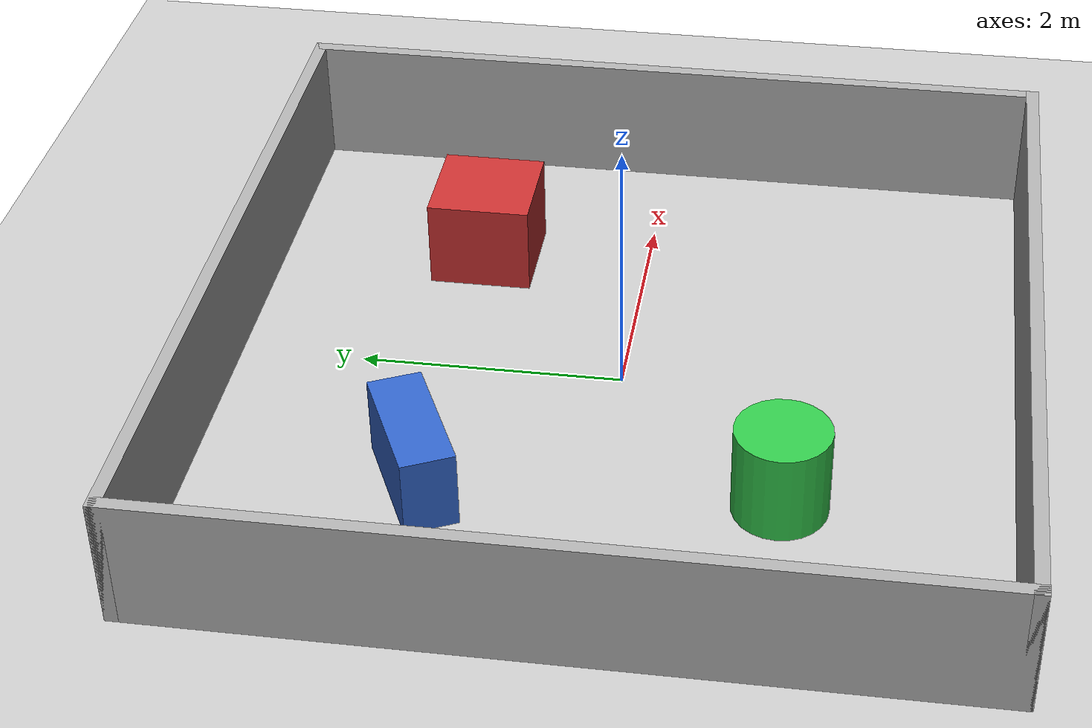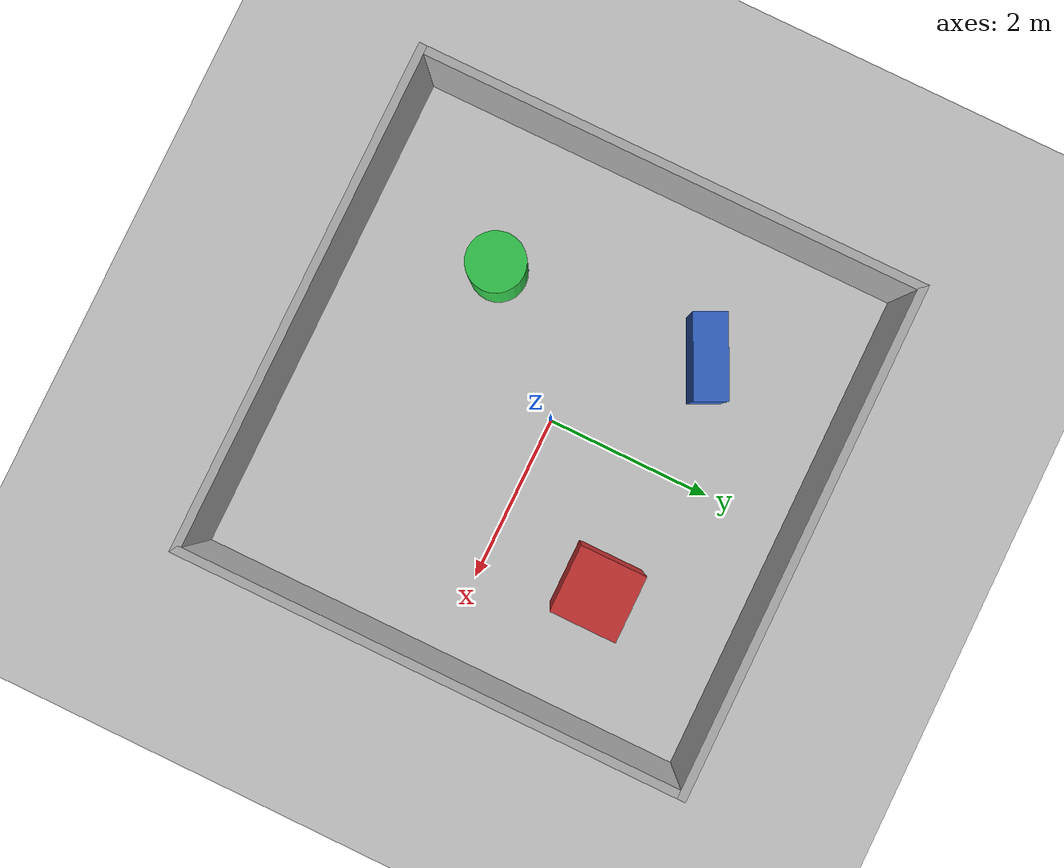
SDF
<?xml version="1.0" ?>
<sdf version="1.6">
  <world name="simple_room">
    <include>
      <uri>model://sun</uri>
    </include>

    <include>
      <uri>model://ground_plane</uri>
    </include>

    <model name="outer_walls">
      <static>true</static>

      <link name="north_wall">
        <pose>0 3.0 0.5 0 0 0</pose>
        <collision name="collision">
          <geometry>
            <box><size>6.1 0.1 1.0</size></box>
          </geometry>
        </collision>
        <visual name="visual">
          <geometry>
            <box><size>6.1 0.1 1.0</size></box>
          </geometry>
          <material>
            <ambient>0.7 0.7 0.7 1</ambient>
            <diffuse>0.7 0.7 0.7 1</diffuse>
          </material>
        </visual>
      </link>

      <link name="south_wall">
        <pose>0 -3.0 0.5 0 0 0</pose>
        <collision name="collision">
          <geometry>
            <box><size>6.1 0.1 1.0</size></box>
          </geometry>
        </collision>
        <visual name="visual">
          <geometry>
            <box><size>6.1 0.1 1.0</size></box>
          </geometry>
          <material>
            <ambient>0.7 0.7 0.7 1</ambient>
            <diffuse>0.7 0.7 0.7 1</diffuse>
          </material>
        </visual>
      </link>

      <link name="east_wall">
        <pose>3.0 0 0.5 0 0 0</pose>
        <collision name="collision">
          <geometry>
            <box><size>0.1 6.1 1.0</size></box>
          </geometry>
        </collision>
        <visual name="visual">
          <geometry>
            <box><size>0.1 6.1 1.0</size></box>
          </geometry>
          <material>
            <ambient>0.7 0.7 0.7 1</ambient>
            <diffuse>0.7 0.7 0.7 1</diffuse>
          </material>
        </visual>
      </link>

      <link name="west_wall">
        <pose>-3.0 0 0.5 0 0 0</pose>
        <collision name="collision">
          <geometry>
            <box><size>0.1 6.1 1.0</size></box>
          </geometry>
        </collision>
        <visual name="visual">
          <geometry>
            <box><size>0.1 6.1 1.0</size></box>
          </geometry>
          <material>
            <ambient>0.7 0.7 0.7 1</ambient>
            <diffuse>0.7 0.7 0.7 1</diffuse>
          </material>
        </visual>
      </link>
    </model>

    <model name="box_obstacle">
      <static>true</static>
      <pose>1.5 1.3 0.35 0 0 0</pose>
      <link name="link">
        <collision name="collision">
          <geometry>
            <box><size>0.8 0.8 0.7</size></box>
          </geometry>
        </collision>
        <visual name="visual">
          <geometry>
            <box><size>0.8 0.8 0.7</size></box>
          </geometry>
          <material>
            <ambient>0.8 0.2 0.2 1</ambient>
            <diffuse>0.8 0.2 0.2 1</diffuse>
          </material>
        </visual>
      </link>
    </model>

    <model name="rectangular_obstacle">
      <static>true</static>
      <pose>-1.4 1.3 0.3 0 0 0.45</pose>
      <link name="link">
        <collision name="collision">
          <geometry>
            <box><size>1.0 0.4 0.6</size></box>
          </geometry>
        </collision>
        <visual name="visual">
          <geometry>
            <box><size>1.0 0.4 0.6</size></box>
          </geometry>
          <material>
            <ambient>0.2 0.4 0.8 1</ambient>
            <diffuse>0.2 0.4 0.8 1</diffuse>
          </material>
        </visual>
      </link>
    </model>

    <model name="cylinder_obstacle">
      <static>true</static>
      <pose>-1.3 -1.3 0.35 0 0 0</pose>
      <link name="link">
        <collision name="collision">
          <geometry>
            <cylinder>
              <radius>0.35</radius>
              <length>0.7</length>
            </cylinder>
          </geometry>
        </collision>
        <visual name="visual">
          <geometry>
            <cylinder>
              <radius>0.35</radius>
              <length>0.7</length>
            </cylinder>
          </geometry>
          <material>
            <ambient>0.2 0.8 0.3 1</ambient>
            <diffuse>0.2 0.8 0.3 1</diffuse>
          </material>
        </visual>
      </link>
    </model>
  </world>
</sdf>
